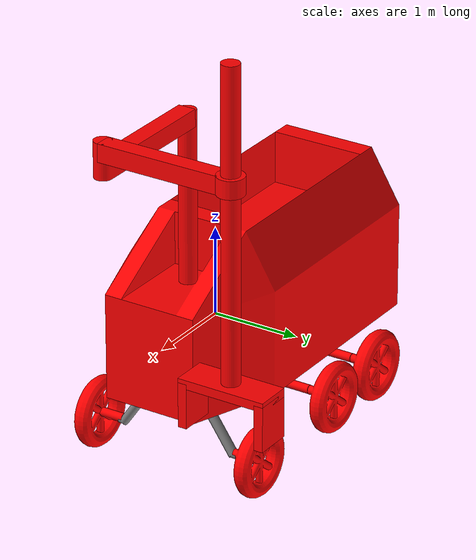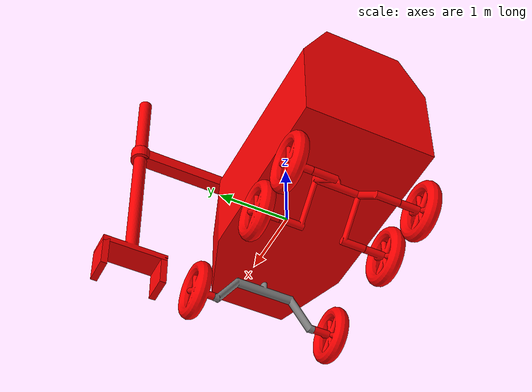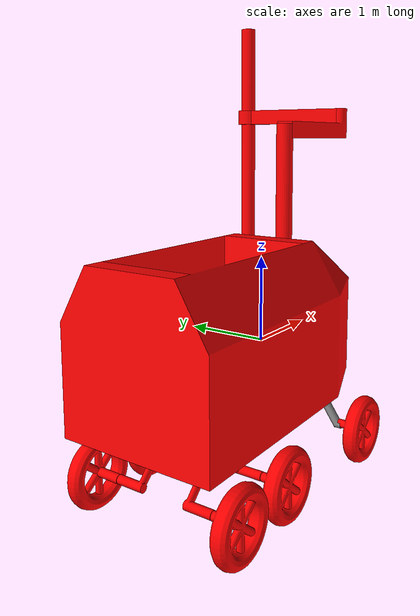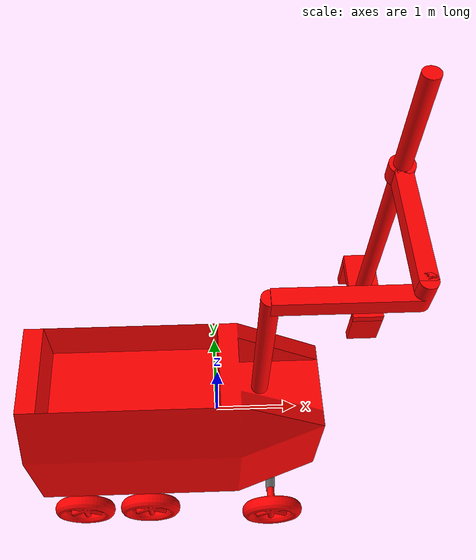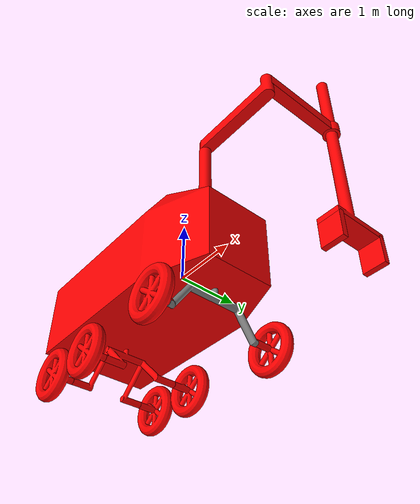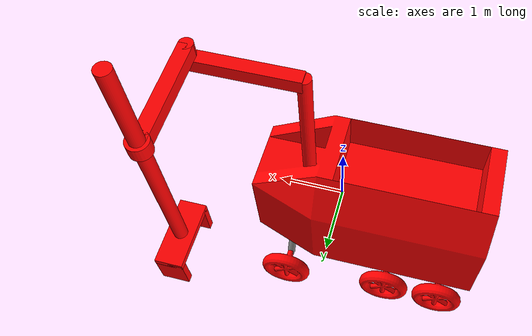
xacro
<?xml version="1.0"?>

<robot name="rover_robot"
       xmlns:xacro="http://www.ros.org/wiki/xacro">

  <!-- Componentes -->
  <xacro:include
    filename="$(find rover_description)/urdf/base/rover_base.urdf.xacro"/>

  <xacro:include
    filename="$(find rover_description)/urdf/wheels/rover_wheel.urdf.xacro"/>

  <xacro:include
    filename="$(find rover_description)/urdf/arm/rover_scara.urdf.xacro"/>

  <xacro:include
    filename="$(find rover_description)/urdf/sensors/imu_sensor.urdf.xacro"/>

  <xacro:include
    filename="$(find rover_description)/urdf/sensors/camera_front.urdf.xacro"/>

  <xacro:include
    filename="$(find rover_description)/urdf/sensors/camera_arm.urdf.xacro"/>

  <xacro:rover_base prefix=""/>

  <xacro:rover_wheel
      prefix="wheel1_"
      parent="Pipe_f_link">

    <origin rpy="-1.57080 3.14159 0.00000" xyz="-0.00000 1.00654 -0.40021"/>

  </xacro:rover_wheel>

  <xacro:rover_wheel
      prefix="wheel2_"
      parent="Pipe_f_link">

    <origin rpy="1.57080 0.00000 0.00000" xyz="-0.00000 -1.00654 -0.39605"/>

  </xacro:rover_wheel>

  <xacro:rover_wheel
      prefix="wheel3_"
      parent="Pipe_f2_link">

    <origin rpy="1.57080 0.00000 -3.14159" xyz="0.43893 0.91091 -0.44021"/>

  </xacro:rover_wheel>

  <xacro:rover_wheel
      prefix="wheel4_"
      parent="Pipe_f2_link">

    <origin rpy="1.57080 0.00000 0.00000" xyz="0.43893 -0.91041 -0.44021"/>

  </xacro:rover_wheel>

  <xacro:rover_wheel
      prefix="wheel5_"
      parent="Pipe_f2_link">

    <origin rpy="-1.57080 3.14159 0.00000" xyz="-0.43893 0.91091 -0.44021"/>

  </xacro:rover_wheel>

  <xacro:rover_wheel
      prefix="wheel6_"
      parent="Pipe_f2_link">

    <origin rpy="1.57080 0.00000 0.00000" xyz="-0.43893 -0.91041 -0.44021"/>

  </xacro:rover_wheel>

  <xacro:rover_scara
      prefix=""
      parent="base_link">

    <origin rpy="0.00000 0.00000 0.00000" xyz="0.51316 0.00000 1.54732"/>

  </xacro:rover_scara>

  <xacro:imu_sensor parent="base_link"
                  link_name="imu_link"
                  topic="imu/data"/>

  <xacro:camera_front parent="base_link"/>

  <xacro:camera_arm parent="Scara4_link"/>

  <xacro:include
      filename="$(find rover_description)/urdf/ros2_control.urdf.xacro"/>
  <!-- Controlador Gazebo ros2  -->
  <xacro:arg name="config_controllers" default="$(find rover_description)/config/robot_controllers.yaml"/>
  <xacro:arg name="update_rate" default="20"/>
  <!-- Esta es la llamada que activa todo el sistema de control -->
  <xacro:ros2_control/>

  <material name="Material">
    <color rgba="0.80000 0.67843 1.00000 1.00000"/>
  </material>
  <material name="Material.001">
    <color rgba="1.00000 0.00000 0.00000 1.00000"/>
  </material>
  <material name="Material.004">
    <color rgba="0.49804 0.49804 0.49804 1.00000"/>
  </material>

</robot>

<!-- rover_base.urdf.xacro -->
<robot xmlns:xacro="http://www.ros.org/wiki/xacro">

  <xacro:macro name="rover_base" params="prefix">

    <link name="${prefix}base_footprint"/>

    <joint name="${prefix}base_footprint_joint" type="fixed">
        <parent link="${prefix}base_footprint"/>
        <child link="${prefix}base_link"/>
        <origin xyz="0 0 0" rpy="0 0 0"/>
    </joint>

    <link name="${prefix}base_link">
        <collision name="${prefix}Rover_body_collision">
            <origin rpy="0.00000 0.00000 0.00000" xyz="-0.50000 0.00000 0.00134"/>
            <geometry>
                <box size="3.50000 1.80000 1.20000"/>
            </geometry>
        </collision>
        <collision name="${prefix}Rover_body_collision.0">
            <origin rpy="0.00000 0.00000 0.00000" xyz="-1.00662 0.70012 0.89933"/>
            <geometry>
                <box size="2.00000 0.30000 0.60000"/>
            </geometry>
        </collision>
        <collision name="${prefix}Rover_body_collision.1">
            <origin rpy="0.00000 0.00000 0.00000" xyz="-1.00662 -0.70012 0.89933"/>
            <geometry>
                <box size="2.00000 0.30000 0.60000"/>
            </geometry>
        </collision>
        <collision name="${prefix}Rover_body_collision.2">
            <origin rpy="0.00000 0.00000 0.00000" xyz="-2.13016 0.00000 0.89667"/>
            <geometry>
                <box size="0.20000 1.80000 0.60000"/>
            </geometry>
        </collision>
        <collision name="${prefix}Rover_body_collision.3">
            <origin rpy="0.00000 0.00000 0.00000" xyz="0.10403 0.00000 0.89667"/>
            <geometry>
                <box size="0.20000 1.80000 0.60000"/>
            </geometry>
        </collision>
        <inertial>
            <origin xyz="0 0 0" rpy="0 0 0"/>
            <mass value="100.0"/>
            <inertia
                ixx="9.9333"
                ixy="0.0"
                ixz="0.0"
                iyy="23.6833"
                iyz="0.0"
                izz="27.0833"/>
        </inertial>
        <visual name="${prefix}Rover_body">
            <material name="Material.001"/>
            <origin rpy="0.00000 0.00000 0.00000" xyz="0.75000 0.00000 0.00000"/>
            <geometry>
                <mesh filename="package://rover_description/meshes/dae/Cube.073.dae" scale="1.00000 1.00000 1.00000"/>
            </geometry>
        </visual>
    </link>

    <joint name="${prefix}Pipe_f2_link_joint" type="fixed">
        <origin rpy="0.00000 0.00000 0.00000" xyz="-1.36275 0.00000 -0.71000"/>
        <parent link="${prefix}base_link"/>
        <child link="${prefix}Pipe_f2_link"/>
    </joint>

    <link name="${prefix}Pipe_f2_link">
        <collision name="${prefix}Pipe_f2_collision">
            <origin rpy="1.57080 0.00000 0.00000" xyz="0.00000 -0.00000 0.00000"/>
            <geometry>
                <mesh filename="package://rover_description/meshes/dae/Cylinder.001.dae" scale="1.00000 1.00000 1.00000"/>
            </geometry>
        </collision>
        <inertial>
            <inertia ixx="0.30484" ixy="-0.00000" ixz="-0.00000" iyy="0.26151" iyz="0.00009" izz="0.44853"/>
            <origin rpy="0.00000 0.00000 0.00000" xyz="-0.00000 0.00012 -0.25002"/>
            <mass value="3.00000"/>
        </inertial>
        <visual name="${prefix}Pipe_f2">
            <material name="Material.001"/>
            <origin rpy="1.57080 0.00000 0.00000" xyz="0.00000 -0.00000 0.00000"/>
            <geometry>
                <mesh filename="package://rover_description/meshes/dae/Cylinder.006.dae" scale="1.00000 1.00000 1.00000"/>
            </geometry>
        </visual>
    </link>

    <joint name="${prefix}Pipe_f_link_joint" type="fixed">
        <origin rpy="0.00000 0.00000 0.00000" xyz="0.71338 0.00000 -0.74153"/>
        <parent link="${prefix}base_link"/>
        <child link="${prefix}Pipe_f_link"/>
    </joint>

    <link name="${prefix}Pipe_f_link">
        <collision name="${prefix}Pipe_f_collision">
            <origin rpy="1.57080 0.00000 0.00000" xyz="-0.00000 0.00000 -0.00000"/>
            <geometry>
                <mesh filename="package://rover_description/meshes/dae/Cylinder.dae" scale="1.07332 0.98500 1.10831"/>
            </geometry>
        </collision>
        <inertial>
            <inertia ixx="0.55431" ixy="0.00000" ixz="-0.00017" iyy="0.05914" iyz="0.00000" izz="0.49935"/>
            <origin rpy="0.00000 0.00000 0.00000" xyz="-0.00014 0.00000 -0.11017"/>
            <mass value="3.00000"/>
        </inertial>
        <visual name="${prefix}Pipe_f">
            <material name="Material.004"/>
            <origin rpy="1.57080 0.00000 0.00000" xyz="0.00000 0.00000 0.00000"/>
            <geometry>
                <mesh filename="package://rover_description/meshes/dae/Cylinder.002.dae" scale="1.22000 1.22000 1.22000"/>
            </geometry>
        </visual>
    </link>

  </xacro:macro>

</robot>

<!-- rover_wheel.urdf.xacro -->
<robot xmlns:xacro="http://www.ros.org/wiki/xacro">

  <xacro:macro name="rover_wheel" params="prefix parent *origin">

    <joint name="${prefix}link_joint" type="continuous">
        <limit effort="100.00000" velocity="10.00000"/>
        <xacro:insert_block name="origin"/>
        <parent link="${parent}"/>
        <child link="${prefix}link"/>
        <axis xyz="0.00000 0.00000 1.00000"/>
    </joint>

    <link name="${prefix}link">
        <collision name="${prefix}collision">
            <origin rpy="0.00000 0.00000 0.00000" xyz="0.00000 0.00000 -0.00000"/>
            <geometry>
                <mesh filename="package://rover_description/meshes/dae/Torus.011.dae" scale="1.00000 1.00000 1.00000"/>
            </geometry>
            <surface>
                <friction>
                    <ode>
                        <mu>1.000000</mu>
                        <mu2>1.000000</mu2>
                        <fdir1>0.000000 0.000000 1.000000</fdir1>
                    </ode>
                </friction>
            </surface>
        </collision>
        <inertial>
            <inertia ixx="0.03721" ixy="0.00000" ixz="0.00000" iyy="0.06912" iyz="0.00000" izz="0.03682"/>
            <origin rpy="0.00000 0.00000 0.00000" xyz="0.00000 0.00000 -0.00809"/>
            <mass value="1.00000"/>
        </inertial>
        <visual name="${prefix}">
            <material name="Material.001"/>
            <origin rpy="0.00000 0.00000 0.00000" xyz="0.00000 0.00000 -0.00172"/>
            <geometry>
                <mesh filename="package://rover_description/meshes/dae/Torus.004.dae" scale="0.32000 0.32000 0.38433"/>
            </geometry>
        </visual>
    </link>

    <!-- Transmission is important to link the joints and the controller (see config/rover_controller.yaml)-->
    <transmission name="${prefix}_wheel_joint_trans">
        <type>transmission_interface/SimpleTransmission</type>
        <joint name="${prefix}wheel_joint" >
            <hardwareInterface>hardware_interface/VelocityJointInterface</hardwareInterface>
        </joint>
        <actuator name="${prefix}wheel_joint_motor">
            <mechanicalReduction>1</mechanicalReduction>
        </actuator>
    </transmission>

    <gazebo reference="${prefix}wheel_link">
        <mu1>5</mu1>
        <mu2>5</mu2>
    </gazebo>

  </xacro:macro>

</robot>

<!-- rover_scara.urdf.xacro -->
<robot xmlns:xacro="http://www.ros.org/wiki/xacro">

  <xacro:macro name="rover_scara" params="prefix parent *origin">

    <joint name="${prefix}Scara_base_link_joint" type="fixed">
        <xacro:insert_block name="origin"/>
        <parent link="${parent}"/>
        <child link="${prefix}Scara_base_link"/>
    </joint>
    <joint name="${prefix}Scara1_link_joint" type="revolute">
        <limit lower="-3.14000" upper="3.14000" effort="1000.00000" velocity="100.00000"/>
        <origin rpy="0.00000 0.00000 0.00000" xyz="0.00000 0.00000 0.92062"/>
        <parent link="${prefix}Scara_base_link"/>
        <child link="${prefix}Scara1_link"/>
        <axis xyz="0.00000 0.00000 1.00000"/>
    </joint>
    <joint name="${prefix}Scara2_link_joint" type="revolute">
        <limit lower="-3.14000" upper="3.14000" effort="1000.00000" velocity="100.00000"/>
        <origin rpy="0.00000 0.00000 0.00000" xyz="1.50000 0.00000 0.20278"/>
        <parent link="${prefix}Scara1_link"/>
        <child link="${prefix}Scara2_link"/>
        <axis xyz="0.00000 0.00000 1.00000"/>
    </joint>
    <joint name="${prefix}Scara3_link_joint" type="revolute">
        <limit lower="-3.14000" upper="3.14000" effort="1000.00000" velocity="100.00000"/>
        <origin rpy="0.00000 0.00000 0.00000" xyz="0.00000 1.50000 0.00000"/>
        <parent link="${prefix}Scara2_link"/>
        <child link="${prefix}Scara3_link"/>
        <axis xyz="0.00000 0.00000 1.00000"/>
    </joint>
    <joint name="${prefix}Scara4_link_joint" type="prismatic">
        <limit lower="-1.25000" upper="2.00000" effort="1000.00000" velocity="100.00000"/>
        <origin rpy="0.00000 0.00000 0.00000" xyz="0.00000 0.00000 -2.37206"/>
        <parent link="${prefix}Scara3_link"/>
        <child link="${prefix}Scara4_link"/>
        <axis xyz="0.00000 0.00000 1.00000"/>
    </joint>
    <joint name="${prefix}Claw1_link_joint" type="prismatic">
        <limit lower="-0.40000" upper="0.00000" effort="1000.00000" velocity="100.00000"/>
        <origin rpy="0.00000 0.00000 0.00000" xyz="0.00000 0.45000 -0.04484"/>
        <parent link="${prefix}Scara4_link"/>
        <child link="${prefix}claw1_link"/>
        <axis xyz="0.00000 1.00000 0.00000"/>
    </joint>
    <joint name="${prefix}Claw2_link_joint" type="prismatic">
        <limit lower="0.00000" upper="0.40000" effort="1000.00000" velocity="100.00000"/>
        <origin rpy="0.00000 0.00000 0.00000" xyz="0.00000 -0.45000 -0.04484"/>
        <parent link="${prefix}Scara4_link"/>
        <child link="${prefix}claw2_link"/>
        <axis xyz="0.00000 1.00000 0.00000"/>
    </joint>

    <link name="${prefix}Scara_base_link">
        <collision name="${prefix}Scara_base_collision">
            <origin rpy="0.00000 0.00000 0.00000" xyz="0.00000 0.00000 0.00000"/>
            <geometry>
                <mesh filename="package://rover_description/meshes/dae/Cylinder.007.dae" scale="1.00000 1.00000 2.00000"/>
            </geometry>
        </collision>
        <inertial>
            <inertia ixx="0.08583" ixy="0.00000" ixz="0.00000" iyy="0.08583" iyz="0.00000" izz="0.00500"/>
            <origin rpy="0.00000 0.00000 0.00000" xyz="0.00000 0.00000 0.00000"/>
            <mass value="1.00000"/>
        </inertial>
        <visual name="${prefix}Scara_base">
            <material name="Material.001"/>
            <origin rpy="0.00000 0.00000 0.00000" xyz="0.00000 0.00000 0.00000"/>
            <geometry>
                <cylinder radius="0.10000" length="2.00000"/>
            </geometry>
        </visual>
    </link>
    <link name="${prefix}Scara1_link">
        <collision name="${prefix}Scara1_collision">
            <origin rpy="0.00000 0.00000 0.00000" xyz="1.50000 0.00000 0.10278"/>
            <geometry>
                <mesh filename="package://rover_description/meshes/dae/Cylinder.008.dae" scale="1.00000 1.00000 1.00000"/>
            </geometry>
        </collision>
        <inertial>
            <inertia ixx="0.01480" ixy="0.00000" ixz="-0.04921" iyy="0.53633" iyz="0.00000" izz="0.52790"/>
            <origin rpy="0.00000 0.00000 0.00000" xyz="0.87919 0.00000 0.02000"/>
            <mass value="1.00000"/>
        </inertial>
        <visual name="${prefix}Scara1">
            <material name="Material.001"/>
            <origin rpy="0.00000 0.00000 0.00000" xyz="1.50000 0.00000 0.10278"/>
            <geometry>
                <mesh filename="package://rover_description/meshes/dae/Cylinder.008.dae" scale="1.00000 1.00000 1.00000"/>
            </geometry>
        </visual>
    </link>
    <link name="${prefix}Scara2_link">
        <collision name="${prefix}Scara2_collision">
            <origin rpy="0.00000 0.00000 0.00000" xyz="0.00000 0.75000 0.00000"/>
            <geometry>
                <mesh filename="package://rover_description/meshes/dae/Cube.122.dae" scale="1.00000 1.00000 1.00000"/>
            </geometry>
        </collision>
        <inertial>
            <inertia ixx="0.19083" ixy="0.00000" ixz="0.00000" iyy="0.00667" iyz="0.00000" izz="0.19083"/>
            <origin rpy="0.00000 0.00000 0.00000" xyz="0.00000 0.75000 0.00000"/>
            <mass value="1.00000"/>
        </inertial>
        <visual name="${prefix}Scara2">
            <material name="Material.001"/>
            <origin rpy="0.00000 0.00000 0.00000" xyz="0.00000 0.75000 0.00000"/>
            <geometry>
                <box size="0.20000 1.50000 0.20000"/>
            </geometry>
        </visual>
    </link>
    <link name="${prefix}Scara3_link">
        <collision name="${prefix}Scara3_collision">
            <origin rpy="0.00000 0.00000 0.00000" xyz="0.00000 0.00000 0.00000"/>
            <geometry>
                <mesh filename="package://rover_description/meshes/dae/Cylinder.010.dae" scale="0.15000 0.15000 0.10000"/>
            </geometry>
        </collision>
        <inertial>
            <inertia ixx="0.00179" ixy="0.00000" ixz="0.00000" iyy="0.00179" iyz="0.00000" izz="0.00225"/>
            <origin rpy="0.00000 0.00000 0.00000" xyz="0.00000 0.00000 0.00000"/>
            <mass value="0.20000"/>
        </inertial>
        <visual name="${prefix}Scara3">
            <material name="Material.001"/>
            <origin rpy="0.00000 0.00000 0.00000" xyz="0.00000 0.00000 0.00000"/>
            <geometry>
                <cylinder radius="0.15000" length="0.20000"/>
            </geometry>
        </visual>
    </link>
    <link name="${prefix}Scara4_link">
        <collision name="${prefix}Scara4_collision">
            <origin rpy="0.00000 0.00000 0.00000" xyz="0.00000 0.00000 1.90052"/>
            <geometry>
                <mesh filename="package://rover_description/meshes/dae/Cylinder.009.dae" scale="1.00000 1.00000 1.00000"/>
            </geometry>
        </collision>
        <inertial>
            <inertia ixx="2.84608" ixy="-0.00000" ixz="-0.00000" iyy="2.77466" iyz="-0.00000" izz="0.10059"/>
            <origin rpy="0.00000 0.00000 0.00000" xyz="0.00000 0.00000 0.43097"/>
            <mass value="2.00000"/>
        </inertial>
        <visual name="${prefix}Scara4">
            <material name="Material.001"/>
            <origin rpy="0.00000 0.00000 0.00000" xyz="0.00000 0.00000 1.90052"/>
            <geometry>
                <mesh filename="package://rover_description/meshes/dae/Cylinder.009.dae" scale="1.00000 1.00000 1.00000"/>
            </geometry>
        </visual>
    </link>
    <link name="${prefix}claw1_link">
        <collision name="${prefix}Claw1_collision">
            <origin rpy="0.00000 0.00000 0.00000" xyz="0.00000 0.00000 -0.05464"/>
            <geometry>
                <mesh filename="package://rover_description/meshes/dae/Cube.125.dae" scale="1.00000 1.00000 1.00000"/>
            </geometry>
        </collision>
        <inertial>
            <inertia ixx="0.00433" ixy="0.00000" ixz="0.00000" iyy="0.00683" iyz="0.00000" izz="0.00283"/>
            <origin rpy="0.00000 0.00000 0.00000" xyz="0.00000 0.00000 -0.05464"/>
            <mass value="0.20000"/>
        </inertial>
        <visual name="${prefix}Claw1">
            <material name="Material.001"/>
            <origin rpy="0.00000 0.00000 0.00000" xyz="0.00000 0.00000 -0.05464"/>
            <geometry>
                <box size="0.40000 0.10000 0.50000"/>
            </geometry>
        </visual>
    </link>
    <link name="${prefix}claw2_link">
        <collision name="${prefix}Claw2_collision">
            <origin rpy="0.00000 0.00000 0.00000" xyz="0.00000 0.00000 -0.05464"/>
            <geometry>
                <mesh filename="package://rover_description/meshes/dae/Cube.124.dae" scale="1.00000 1.00000 1.00000"/>
            </geometry>
        </collision>
        <inertial>
            <inertia ixx="0.00433" ixy="0.00000" ixz="0.00000" iyy="0.00683" iyz="0.00000" izz="0.00283"/>
            <origin rpy="0.00000 0.00000 0.00000" xyz="0.00000 0.00000 -0.05464"/>
            <mass value="0.20000"/>
        </inertial>
        <visual name="${prefix}Claw2">
            <material name="Material.001"/>
            <origin rpy="0.00000 0.00000 0.00000" xyz="0.00000 0.00000 -0.05464"/>
            <geometry>
                <box size="0.40000 0.10000 0.50000"/>
            </geometry>
        </visual>
    </link>

  </xacro:macro>

</robot>

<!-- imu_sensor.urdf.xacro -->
<robot xmlns:xacro="http://www.ros.org/wiki/xacro">

    <xacro:macro name="imu_sensor"
                params="parent link_name:=imu_link topic:=imu/data">

    <!-- unión al robot -->
    <joint name="${link_name}_joint" type="fixed">
        <parent link="${parent}"/>
        <child link="${link_name}"/>
        <origin xyz="0 0 0" rpy="0 0 0"/>
    </joint>

    <!-- link del sensor -->
    <link name="${link_name}"/>

    <!-- gazebo IMU -->
    <gazebo reference="${link_name}">
        <sensor name="imu" type="imu">
            <always_on>1</always_on>
            <update_rate>30</update_rate>
            <topic>${topic}</topic>
        </sensor>
    </gazebo>

    </xacro:macro>

</robot>

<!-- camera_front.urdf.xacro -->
<robot xmlns:xacro="http://www.ros.org/wiki/xacro">

    <xacro:macro name="camera_front"
                params="parent link_name:=front_camera_link">

        <link name="${link_name}"/>

        <joint name="${link_name}_joint" type="fixed">
            <parent link="${parent}"/>
            <child link="${link_name}"/>
            <origin xyz="1.0 0 0.5" rpy="0 0 0"/>
        </joint>

        <gazebo reference="${link_name}">
            <sensor name="front_camera" type="camera">
                <update_rate>30</update_rate>
                <visualize>true</visualize>

                <camera>
                    <horizontal_fov>1.57</horizontal_fov>

                    <image>
                        <width>640</width>
                        <height>480</height>
                        <format>R8G8B8</format>
                    </image>

                    <clip>
                        <near>0.1</near>
                        <far>20</far>
                    </clip>

                    <noise>
                        <type>gaussian</type>
                        <mean>0.0</mean>
                        <stddev>0.007</stddev>
                    </noise>

                    <optical_frame_id>front_camera_frame</optical_frame_id>
                </camera>

                <topic>/camera/front/image</topic>
            </sensor>
        </gazebo>

    </xacro:macro>

</robot>

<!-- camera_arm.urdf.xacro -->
<robot xmlns:xacro="http://www.ros.org/wiki/xacro">

    <xacro:macro name="camera_arm"
                params="parent link_name:=arm_camera_link">

        <link name="${link_name}"/>

        <joint name="${link_name}_joint" type="fixed">
            <parent link="${parent}"/>
            <child link="${link_name}"/>
            <origin xyz="0 0 0.05" rpy="0 0 0"/>
        </joint>

        <gazebo reference="${link_name}">
            <sensor name="arm_camera" type="camera">
                <update_rate>30</update_rate>
                <visualize>true</visualize>

                <camera>
                    <horizontal_fov>1.57</horizontal_fov>

                    <image>
                        <width>640</width>
                        <height>480</height>
                        <format>R8G8B8</format>
                    </image>

                    <clip>
                        <near>0.1</near>
                        <far>10</far>
                    </clip>

                    <noise>
                        <type>gaussian</type>
                        <mean>0.0</mean>
                        <stddev>0.007</stddev>
                    </noise>

                    <optical_frame_id>arm_camera_frame</optical_frame_id>
                </camera>

                <topic>/camera/arm/image</topic>
            </sensor>
        </gazebo>

    </xacro:macro>

</robot>
